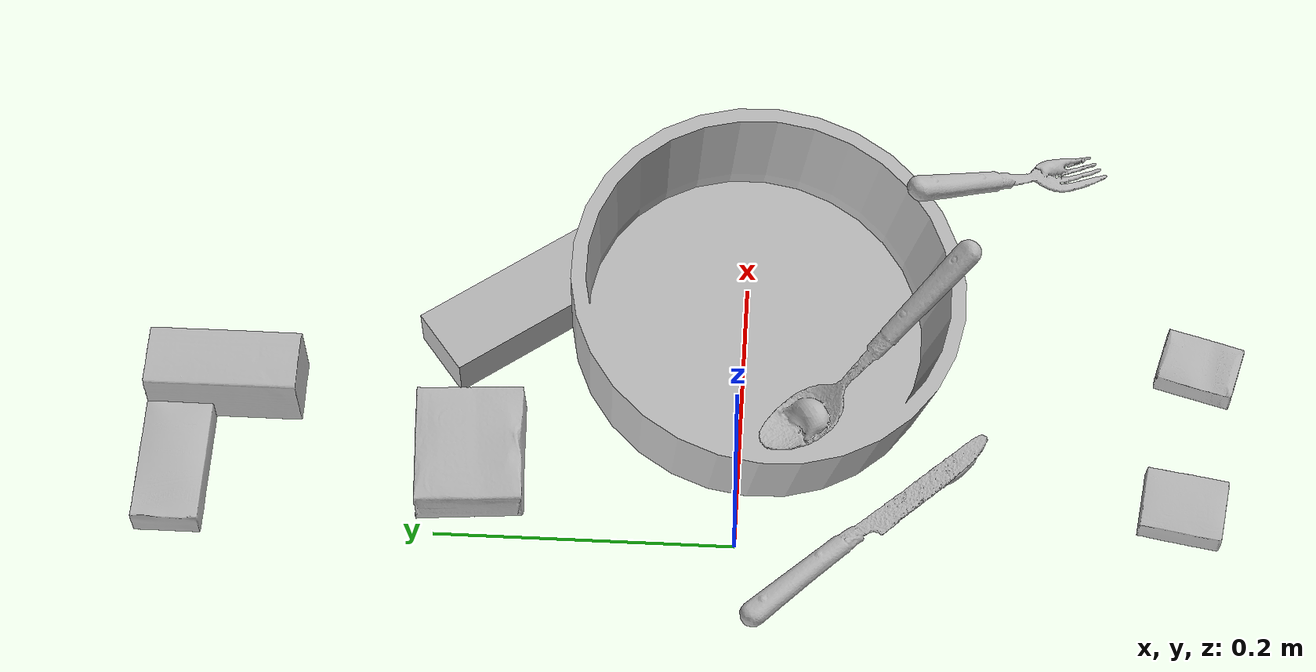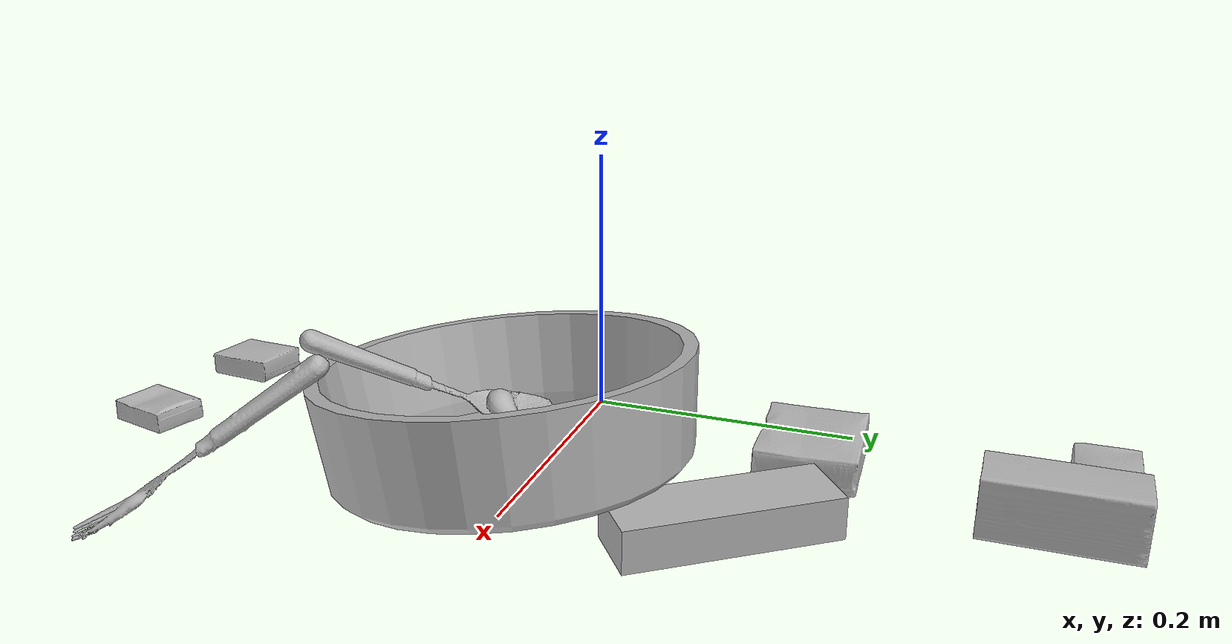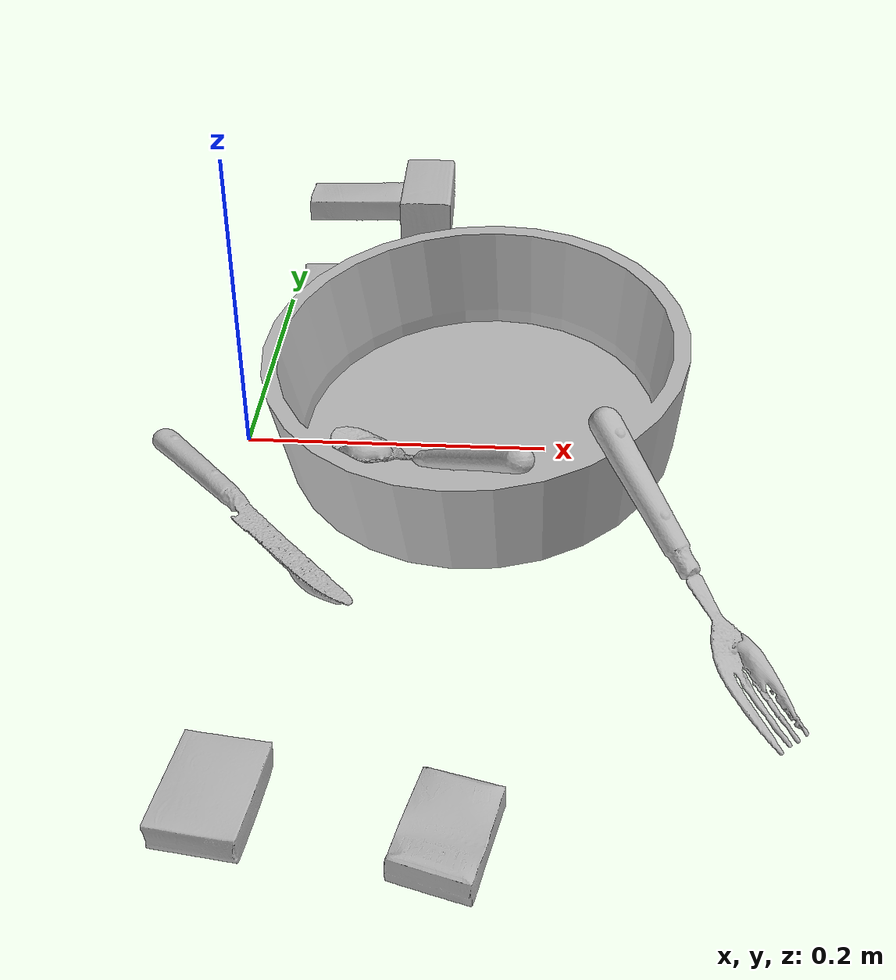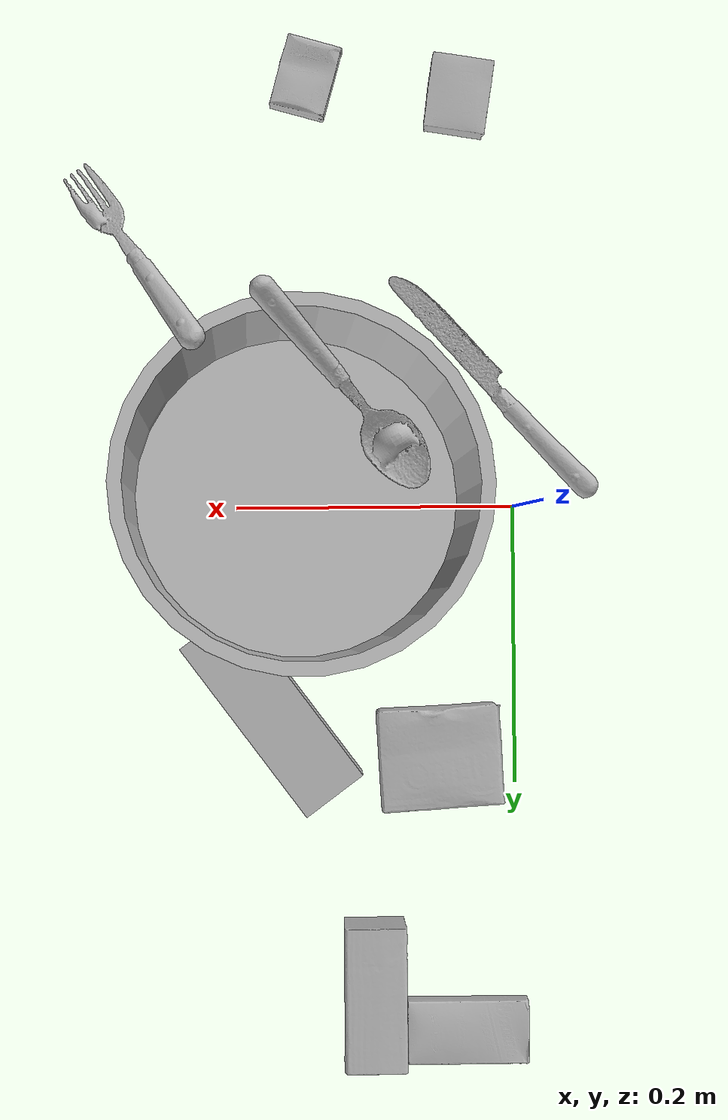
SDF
<sdf version="1.4">
  <world name="default">
    <light name="light1" type="point">
      <pose>0 0 1 0 0 0</pose>
      <diffuse>3 3 3 1</diffuse>
      <specular>3 3 3 1</specular>
    </light>
    <light name="light2" type="point">
      <pose>0 0.5 2 0 0 0</pose>
      <diffuse>1 1 1 1</diffuse>
      <specular>1 1 1 1</specular>
    </light>
    <light name="light3" type="point">
      <pose>0 0.5 2 0 0 0</pose>
      <diffuse>3 3 3 1</diffuse>
      <specular>3 3 3 1</specular>
    </light>
    <scene>
      <ambient>0.7 0.7 0.7</ambient>
    </scene>
    <model name="box11">
      <link name="link_box11">
        <collision name="default">
          <geometry>
            <mesh>
              <uri>model://jenga/collision_meshes/collision.obj</uri>
              <scale>1.0 1.0 1.0</scale>
            </mesh>
          </geometry>
          <surface>
            <friction>
              <ode>
                <mu>0.5</mu>
                <mu2>0.5</mu2>
              </ode>
            </friction>
          <contact>
        <ode>
            <max_vel>0</max_vel>
            <min_depth>0.0001</min_depth>
            <kp>1e8</kp>
        </ode>
    </contact></surface>
        </collision>
        <visual name="default">
          <geometry>
            <mesh>
              <uri>model://jenga/visual_meshes/visual.dae</uri>
              <scale>1.0 1.0 1.0</scale>
            </mesh>
          </geometry>
        </visual>
        <inertial>
          <mass>0.3186844289302826</mass>
          <pose>-2.502855807051674e-07 -0.0001025000965455547 -4.0923401684267446e-05 0.0 -7.34215461761844e-07 0.0</pose>
          <inertia>
            <ixx>8.818771e-05</ixx>
            <iyy>0.0005975576</iyy>
            <izz>0.00063794345</izz>
            <ixy>0</ixy>
            <ixz>0</ixz>
            <iyz>0</iyz>
          </inertia>
        </inertial>
      </link>
      <pose>0.1754302680492401 0.14573639631271362 0.015004350803792477 -6.443418932660233e-05 -1.0283263655343492e-05 2.213251794366727</pose>
    </model>
    <model name="box12">
      <link name="link_box12">
        <collision name="default">
          <geometry>
            <mesh>
              <uri>model://pudding_box/collision_meshes/collision.obj</uri>
              <scale>0.5 0.5 0.5</scale>
            </mesh>
          </geometry>
          <surface>
            <friction>
              <ode>
                <mu>0.5</mu>
                <mu2>0.5</mu2>
              </ode>
            </friction>
          <contact>
        <ode>
            <max_vel>0</max_vel>
            <min_depth>0.0001</min_depth>
            <kp>1e8</kp>
        </ode>
    </contact></surface>
        </collision>
        <visual name="default">
          <geometry>
            <mesh>
              <uri>model://pudding_box/visual_meshes/visual.dae</uri>
              <scale>0.5 0.5 0.5</scale>
            </mesh>
          </geometry>
        </visual>
        <inertial>
          <mass>0.030172348022460938</mass>
          <pose>0.00024474109522998333 0.000403394311433658 -0.00025944141088984907 0.005213102256408686 -0.006603800110353006 0.02007982142872578</pose>
          <inertia>
            <ixx>8.527073e-06</ixx>
            <iyy>5.7370744e-06</iyy>
            <izz>1.259245e-05</izz>
            <ixy>0</ixy>
            <ixz>0</ixz>
            <iyz>0</iyz>
          </inertia>
        </inertial>
      </link>
      <pose>0.038420651108026505 -0.29616162180900574 0.009862901642918587 0.02234854875558829 -0.011391696327354251 -0.15014088497781605</pose>
    </model>
    <model name="box13">
      <link name="link_box13">
        <collision name="default">
          <geometry>
            <mesh>
              <uri>model://sugar_box/collision_meshes/collision.obj</uri>
              <scale>0.5 0.5 0.5</scale>
            </mesh>
          </geometry>
          <surface>
            <friction>
              <ode>
                <mu>0.5</mu>
                <mu2>0.5</mu2>
              </ode>
            </friction>
          <contact>
        <ode>
            <max_vel>0</max_vel>
            <min_depth>0.0001</min_depth>
            <kp>1e8</kp>
        </ode>
    </contact></surface>
        </collision>
        <visual name="default">
          <geometry>
            <mesh>
              <uri>model://sugar_box/visual_meshes/visual.dae</uri>
              <scale>0.5 0.5 0.5</scale>
            </mesh>
          </geometry>
        </visual>
        <inertial>
          <mass>0.12330043315887451</mass>
          <pose>0.0005171863595023751 1.924554817378521e-05 -0.0001818240125430748 -0.0004046263878582698 0.0010506634058618082 0.0026153787888998363</pose>
          <inertia>
            <ixx>2.5683388e-05</ixx>
            <iyy>8.301401e-05</iyy>
            <izz>9.937768e-05</izz>
            <ixy>0</ixy>
            <ixz>0</ixz>
            <iyz>0</iyz>
          </inertia>
        </inertial>
      </link>
      <pose>0.03587185591459274 0.3767462968826294 0.011399301700294018 0.0007745447914486563 -0.023433037367470422 -0.005167517082186226</pose>
    </model>
    <model name="box21">
      <link name="link_box21">
        <collision name="default">
          <geometry>
            <mesh>
              <uri>model://wood_block/collision_meshes/collision.obj</uri>
              <scale>0.5 0.5 0.5</scale>
            </mesh>
          </geometry>
          <surface>
            <friction>
              <ode>
                <mu>0.5</mu>
                <mu2>0.5</mu2>
              </ode>
            </friction>
          <contact>
        <ode>
            <max_vel>0</max_vel>
            <min_depth>0.0001</min_depth>
            <kp>1e8</kp>
        </ode>
    </contact></surface>
        </collision>
        <visual name="default">
          <geometry>
            <mesh>
              <uri>model://wood_block/visual_meshes/visual.dae</uri>
              <scale>0.5 0.5 0.5</scale>
            </mesh>
          </geometry>
        </visual>
        <inertial>
          <mass>0.22575385868549347</mass>
          <pose>-2.9066577553749084e-06 -0.00028540470520965755 0.00013204291462898254 -0.05220771918194674 -0.005192696213783058 -0.006861377697513623</pose>
          <inertia>
            <ixx>7.552322e-05</ixx>
            <iyy>0.00023857782</iyy>
            <izz>0.00023768542</izz>
            <ixy>0</ixy>
            <ixz>0</ixz>
            <iyz>0</iyz>
          </inertia>
        </inertial>
      </link>
      <pose>0.10244408994913101 0.34834128618240356 0.022629264742136 -0.005208439652916911 0.00571873851217114 1.575468098692783</pose>
    </model>
    <model name="box22">
      <link name="link_box22">
        <collision name="default">
          <geometry>
            <mesh>
              <uri>model://cracker_box/collision_meshes/collision.obj</uri>
              <scale>0.25 0.25 0.25</scale>
            </mesh>
          </geometry>
          <surface>
            <friction>
              <ode>
                <mu>0.5</mu>
                <mu2>0.5</mu2>
              </ode>
            </friction>
          <contact>
        <ode>
            <max_vel>0</max_vel>
            <min_depth>0.0001</min_depth>
            <kp>1e8</kp>
        </ode>
    </contact></surface>
        </collision>
        <visual name="default">
          <geometry>
            <mesh>
              <uri>model://cracker_box/visual_meshes/visual.dae</uri>
              <scale>0.25 0.25 0.25</scale>
            </mesh>
          </geometry>
        </visual>
        <inertial>
          <mass>0.02141544781625271</mass>
          <pose>0.0002366038243053481 6.358561950037256e-05 -0.00042573839891701937 -0.000316207804917531 -0.011106489600095467 0.0025467954686493135</pose>
          <inertia>
            <ixx>3.4044588e-06</ixx>
            <iyy>5.62143e-06</iyy>
            <izz>8.022297e-06</izz>
            <ixy>0</ixy>
            <ixz>0</ixz>
            <iyz>0</iyz>
          </inertia>
        </inertial>
      </link>
      <pose>0.14806026220321655 -0.30990028381347656 0.009120447561144829 -0.011788053165320585 -0.007367103435408397 1.2975283040827124</pose>
    </model>
    <model name="box23">
      <link name="link_box23">
        <collision name="default">
          <geometry>
            <mesh>
              <uri>model://gelatin_box/collision_meshes/collision.obj</uri>
              <scale>1.0 1.0 1.0</scale>
            </mesh>
          </geometry>
          <surface>
            <friction>
              <ode>
                <mu>0.5</mu>
                <mu2>0.5</mu2>
              </ode>
            </friction>
          <contact>
        <ode>
            <max_vel>0</max_vel>
            <min_depth>0.0001</min_depth>
            <kp>1e8</kp>
        </ode>
    </contact></surface>
        </collision>
        <visual name="default">
          <geometry>
            <mesh>
              <uri>model://gelatin_box/visual_meshes/visual.dae</uri>
              <scale>1.0 1.0 1.0</scale>
            </mesh>
          </geometry>
        </visual>
        <inertial>
          <mass>0.2518538236618042</mass>
          <pose>0.00043196187471039593 0.00011156871914863586 -0.0003640321083366871 -0.001050372077086074 -0.00475581729336075 0.01644055760821351</pose>
          <inertia>
            <ixx>0.00017778824</ixx>
            <iyy>0.00012699323</iyy>
            <izz>0.00027063338</izz>
            <ixy>0</ixy>
            <ixz>0</ixz>
            <iyz>0</iyz>
          </inertia>
        </inertial>
      </link>
      <pose>0.0547587126493454 0.17963755130767822 0.015168310143053532 0.005597024147864373 -0.007304075420191296 -1.5209800007108558</pose>
    </model>
    <model name="plate1">
      <link name="link_plate1">
        <collision name="default">
          <geometry>
            <mesh>
              <uri>model://pan_tefal/collision_meshes/collision.obj</uri>
              <scale>1.0 1.0 1.0</scale>
            </mesh>
          </geometry>
          <surface>
            <friction>
              <ode>
                <mu>0.5</mu>
                <mu2>0.5</mu2>
              </ode>
            </friction>
          <contact>
        <ode>
            <max_vel>0</max_vel>
            <min_depth>0.0001</min_depth>
            <kp>1e8</kp>
        </ode>
    </contact></surface>
        </collision>
        <visual name="default">
          <geometry>
            <mesh>
              <uri>model://pan_tefal/visual_meshes/visual.dae</uri>
              <scale>1.0 1.0 1.0</scale>
            </mesh>
          </geometry>
        </visual>
        <inertial>
          <mass>1.2783581018447876</mass>
          <pose>-0.0001800234749680385 3.279297015978955e-05 -0.008514934219419956 0.0008190282028794127 -0.0003301398069692291 -0.33185125702417473</pose>
          <inertia>
            <ixx>0.0088244425</ixx>
            <iyy>0.008881334</iyy>
            <izz>0.016244099</izz>
            <ixy>0</ixy>
            <ixz>0</ixz>
            <iyz>0</iyz>
          </inertia>
        </inertial>
      </link>
      <pose>0.15382987260818481 -0.011271505616605282 0.054902732372283936 0.002858090767377714 0.14649201258957975 -2.096909176541111</pose>
    </model>
    <model name="silverware1">
      <link name="link_silverware1">
        <collision name="default">
          <geometry>
            <mesh>
              <uri>model://knife/collision_meshes/collision.obj</uri>
              <scale>1.0 1.0 1.0</scale>
            </mesh>
          </geometry>
          <surface>
            <friction>
              <ode>
                <mu>0.5</mu>
                <mu2>0.5</mu2>
              </ode>
            </friction>
          <contact>
        <ode>
            <max_vel>0</max_vel>
            <min_depth>0.0001</min_depth>
            <kp>1e8</kp>
        </ode>
    </contact></surface>
        </collision>
        <visual name="default">
          <geometry>
            <mesh>
              <uri>model://knife/visual_meshes/visual.dae</uri>
              <scale>1.0 1.0 1.0</scale>
            </mesh>
          </geometry>
        </visual>
        <inertial>
          <mass>0.028752580285072327</mass>
          <pose>-0.023785240948200226 0.0015275123296305537 5.0620223191799596e-05 0.07306965696526056 0.017248417457013686 -0.00740982691157592</pose>
          <inertia>
            <ixx>8.161146e-07</ixx>
            <iyy>0.000110462766</iyy>
            <izz>0.00011072555</izz>
            <ixy>0</ixy>
            <ixz>0</ixz>
            <iyz>0</iyz>
          </inertia>
        </inertial>
      </link>
      <pose>0.013423592783510685 -0.08825453370809555 0.008136838674545288 -0.28173304420784456 -0.00887196924314757 -0.8332389351236004</pose>
    </model>
    <model name="silverware2">
      <link name="link_silverware2">
        <collision name="default">
          <geometry>
            <mesh>
              <uri>model://spoon/collision_meshes/collision.obj</uri>
              <scale>1.0 1.0 1.0</scale>
            </mesh>
          </geometry>
          <surface>
            <friction>
              <ode>
                <mu>0.5</mu>
                <mu2>0.5</mu2>
              </ode>
            </friction>
          <contact>
        <ode>
            <max_vel>0</max_vel>
            <min_depth>0.0001</min_depth>
            <kp>1e8</kp>
        </ode>
    </contact></surface>
        </collision>
        <visual name="default">
          <geometry>
            <mesh>
              <uri>model://spoon/visual_meshes/visual.dae</uri>
              <scale>1.0 1.0 1.0</scale>
            </mesh>
          </geometry>
        </visual>
        <inertial>
          <mass>0.03275385871529579</mass>
          <pose>-0.005526320543140173 -0.0016034176805987954 -0.0007271653157658875 0.03521620701241808 -0.03906583474323888 0.006150609342160928</pose>
          <inertia>
            <ixx>1.8218228e-06</ixx>
            <iyy>0.00012462735</iyy>
            <izz>0.0001255258</izz>
            <ixy>0</ixy>
            <ixz>0</ixz>
            <iyz>0</iyz>
          </inertia>
        </inertial>
      </link>
      <pose>0.12262233346700668 -0.08731676638126373 0.05579490214586258 0.2240015891583983 0.49803949174581214 2.297130364067709</pose>
    </model>
    <model name="silverware3">
      <link name="link_silverware3">
        <collision name="default">
          <geometry>
            <mesh>
              <uri>model://fork/collision_meshes/collision.obj</uri>
              <scale>1.0 1.0 1.0</scale>
            </mesh>
          </geometry>
          <surface>
            <friction>
              <ode>
                <mu>0.5</mu>
                <mu2>0.5</mu2>
              </ode>
            </friction>
          <contact>
        <ode>
            <max_vel>0</max_vel>
            <min_depth>0.0001</min_depth>
            <kp>1e8</kp>
        </ode>
    </contact></surface>
        </collision>
        <visual name="default">
          <geometry>
            <mesh>
              <uri>model://fork/visual_meshes/visual.dae</uri>
              <scale>1.0 1.0 1.0</scale>
            </mesh>
          </geometry>
        </visual>
        <inertial>
          <mass>0.015051598660647869</mass>
          <pose>-0.029570037499070168 0.00046588244731538 0.0003218861238565296 -0.013550825752082697 -0.010977832944741694 0.014453903400543814</pose>
          <inertia>
            <ixx>5.2764364e-07</ixx>
            <iyy>3.9295395e-05</iyy>
            <izz>3.953141e-05</izz>
            <ixy>0</ixy>
            <ixz>0</ixz>
            <iyz>0</iyz>
          </inertia>
        </inertial>
      </link>
      <pose>0.26750871539115906 -0.17554670572280884 0.05033518373966217 0.08255335946485425 0.5882575443377226 -0.9661617931213552</pose>
    </model>
  <physics type="ode">
      <max_contacts>50</max_contacts>
      <ode>
        <solver>
          <type>quick</type>
          <iters>75</iters>
        </solver>
        <constraints>
          <contact_max_correcting_vel>0</contact_max_correcting_vel>
          <contact_surface_layer>0</contact_surface_layer>
        </constraints>
      </ode>
    </physics></world>
</sdf>
